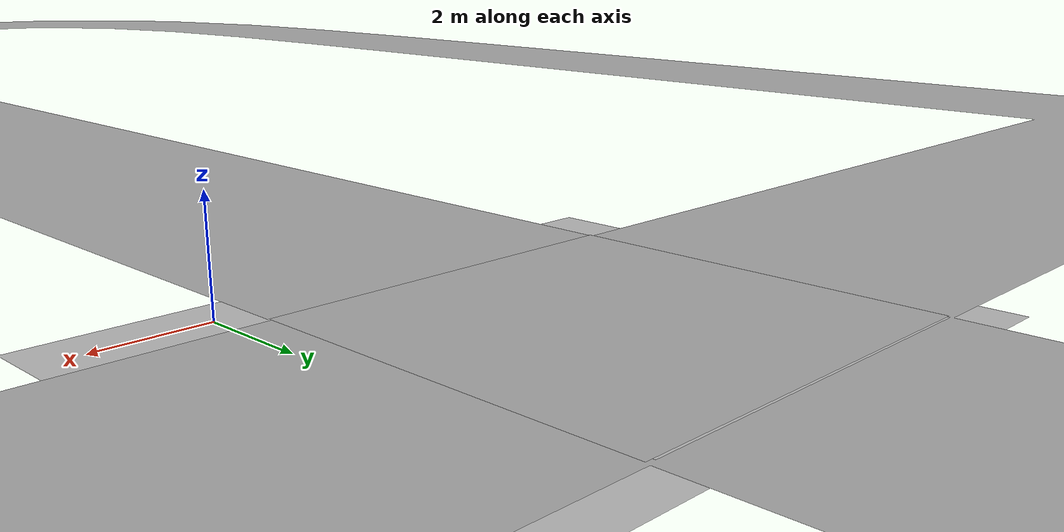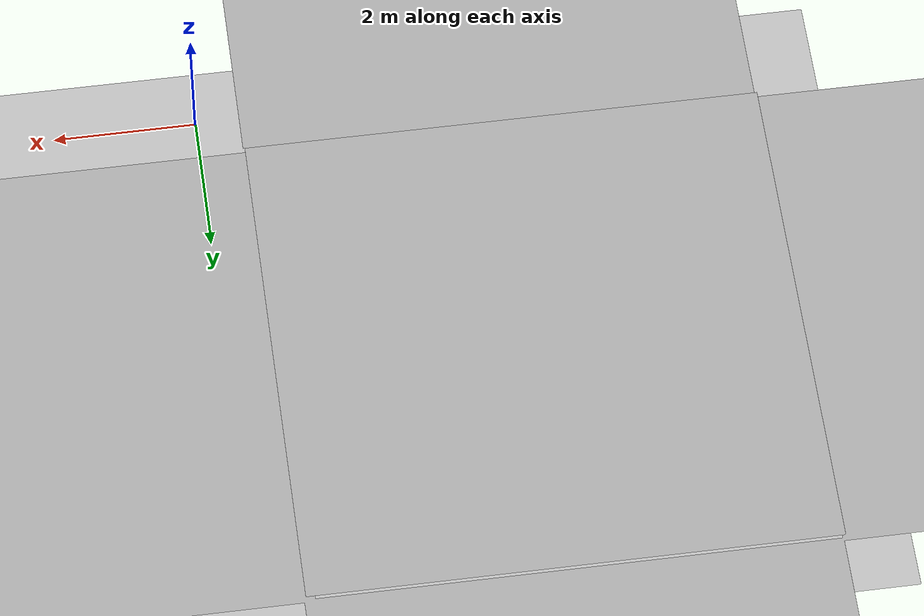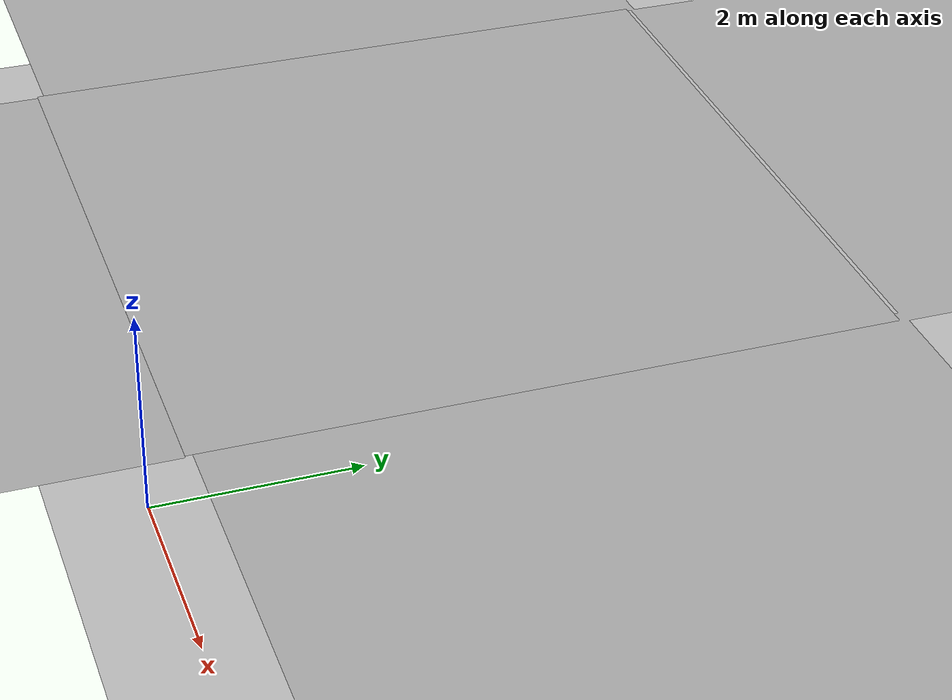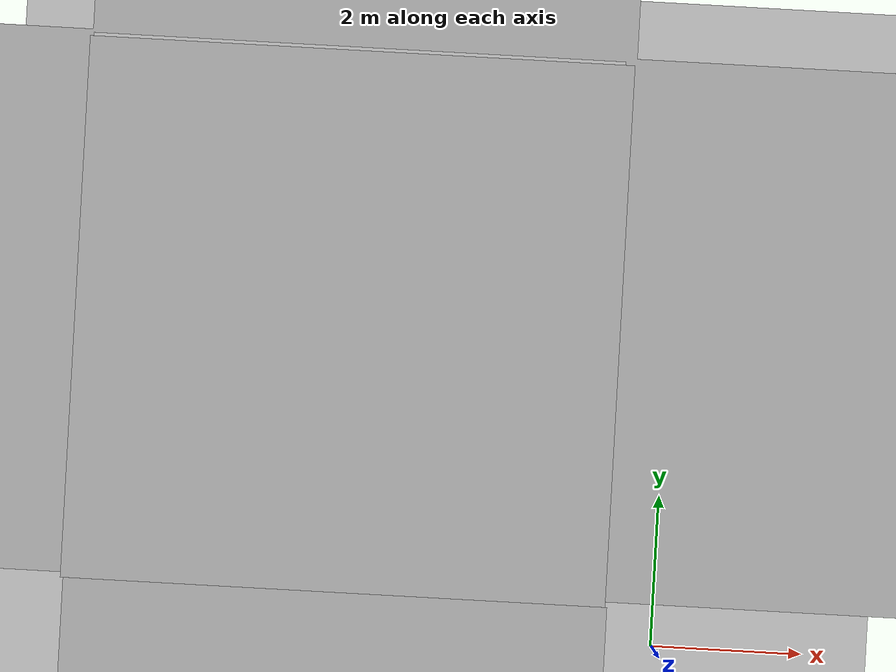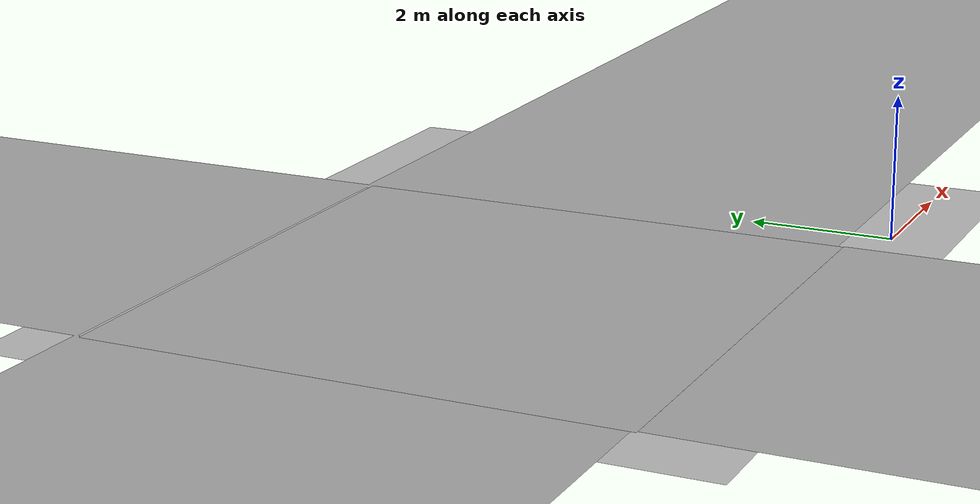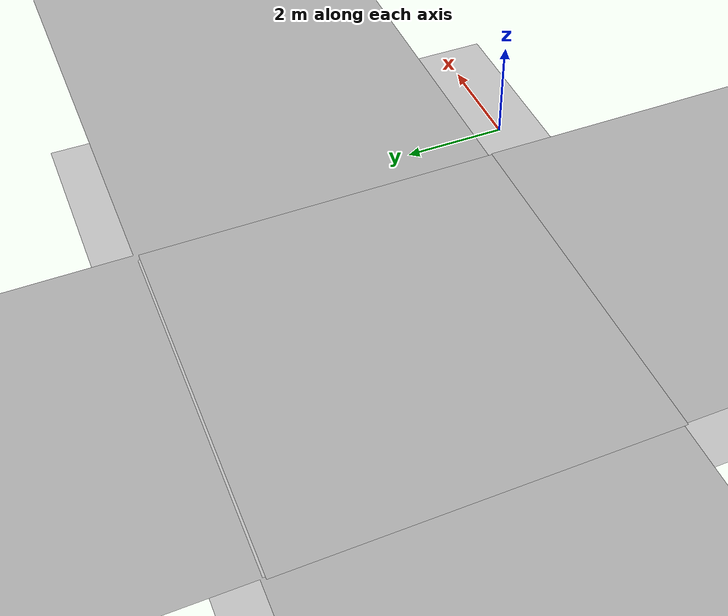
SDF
<?xml version="1.0" ?>
<sdf version="1.6">
  <world name="simple_world">
    <gravity>0 0 -9.8</gravity>
    <magnetic_field>6e-06 2.3e-05 -4.2e-05</magnetic_field>
    <atmosphere type='adiabatic'/>
    <physics type='ode'>
      <max_step_size>0.001</max_step_size>
      <real_time_factor>1</real_time_factor>
      <real_time_update_rate>1000</real_time_update_rate>
    </physics>
    <scene>
      <ambient>0.4 0.4 0.4 1</ambient>
      <background>0.7 0.7 0.7 1</background>
      <shadows>1</shadows>
    </scene>
    <audio>
      <device>default</device>
    </audio>
    <wind/>
    <spherical_coordinates>
      <surface_model>EARTH_WGS84</surface_model>
      <latitude_deg>0</latitude_deg>
      <longitude_deg>0</longitude_deg>
      <elevation>0</elevation>
      <heading_deg>0</heading_deg>
    </spherical_coordinates>

    <!-- Light source -->
    <light name='sun' type='directional'>
      <cast_shadows>1</cast_shadows>
      <pose>0 0 10 0 -0 0</pose>
      <diffuse>0.8 0.8 0.8 1</diffuse>
      <specular>0.2 0.2 0.2 1</specular>
      <attenuation>
        <range>1000</range>
        <constant>0.9</constant>
        <linear>0.01</linear>
        <quadratic>0.001</quadratic>
      </attenuation>
      <direction>-0.5 0.1 -0.9</direction>
      <spot>
        <inner_angle>0</inner_angle>
        <outer_angle>0</outer_angle>
        <falloff>0</falloff>
      </spot>
    </light>

    <!-- Ground Plane -->
    <model name='ground_plane'>
      <static>1</static>
      <link name='link'>
        <collision name='collision'>
          <geometry>
            <plane>
              <normal>0 0 1</normal>
              <size>100 100</size>
            </plane>
          </geometry>
          <surface>
            <friction>
              <ode>
                <mu>100</mu>
                <mu2>50</mu2>
              </ode>
              <torsional>
                <ode/>
              </torsional>
            </friction>
            <contact>
              <ode/>
            </contact>
            <bounce/>
          </surface>
          <max_contacts>10</max_contacts>
        </collision>
        <visual name='visual'>
          <cast_shadows>0</cast_shadows>
          <geometry>
            <plane>
              <normal>0 0 1</normal>
              <size>100 100</size>
            </plane>
          </geometry>
          <material>
            <script>
              <uri>file://media/materials/scripts/gazebo.material</uri>
              <name>Gazebo/Grey</name>
            </script>
          </material>
        </visual>
        <self_collide>0</self_collide>
        <enable_wind>0</enable_wind>
        <kinematic>0</kinematic>
      </link>
    </model>

    <!-- Self Driving Track -->
    <model name='self_driving_track'>
      <link name='link_0'>
        <pose>-0.03442 0.020057 0 0 -0 0</pose>
        <visual name='visual'>
          <pose>0 0 0 0 -0 0</pose>
          <geometry>
            <mesh>
              <uri>model://track/meshes/complete_circuit.dae</uri>
              <scale>1 1 1</scale>
            </mesh>
          </geometry>
          <material>
            <script>
              <uri>model://track/materials/scripts/</uri>
              <uri>model://track/materials/textures</uri>
              <name>road/Diffuse</name>
            </script>
          </material>
          <transparency>0</transparency>
          <cast_shadows>1</cast_shadows>
        </visual>
        <collision name='collision'>
          <laser_retro>0</laser_retro>
          <max_contacts>10</max_contacts>
          <pose>0 0 0 0 -0 0</pose>
          <geometry>
            <mesh>
              <uri>model://track/meshes/complete_circuit.dae</uri>
              <scale>1 1 1</scale>
            </mesh>
          </geometry>
          <surface>
            <friction>
              <ode>
                <mu>1</mu>
                <mu2>1</mu2>
                <fdir1>0 0 0</fdir1>
                <slip1>0</slip1>
                <slip2>0</slip2>
              </ode>
              <torsional>
                <coefficient>1</coefficient>
                <patch_radius>0</patch_radius>
                <surface_radius>0</surface_radius>
                <use_patch_radius>1</use_patch_radius>
                <ode>
                  <slip>0</slip>
                </ode>
              </torsional>
            </friction>
            <bounce>
              <restitution_coefficient>0</restitution_coefficient>
              <threshold>1e+06</threshold>
            </bounce>
            <contact>
              <collide_without_contact>0</collide_without_contact>
              <collide_without_contact_bitmask>1</collide_without_contact_bitmask>
              <collide_bitmask>1</collide_bitmask>
              <ode>
                <soft_cfm>0</soft_cfm>
                <soft_erp>0.2</soft_erp>
                <kp>1e+13</kp>
                <kd>1</kd>
                <max_vel>0.01</max_vel>
                <min_depth>0</min_depth>
              </ode>
              <bullet>
                <split_impulse>1</split_impulse>
                <split_impulse_penetration_threshold>-0.01</split_impulse_penetration_threshold>
                <soft_cfm>0</soft_cfm>
                <soft_erp>0.2</soft_erp>
                <kp>1e+13</kp>
                <kd>1</kd>
              </bullet>
            </contact>
          </surface>
        </collision>
        <self_collide>0</self_collide>
        <enable_wind>0</enable_wind>
        <kinematic>0</kinematic>
      </link>
      <link name='link_1'>
        <pose>0.034415 -0.020057 0 0 -0 0</pose>
        <visual name='visual'>
          <pose>0 0 0 0 -0 0</pose>
          <geometry>
            <mesh>
              <uri>model://track/meshes/chowk.dae</uri>
              <scale>1 1 1</scale>
            </mesh>
          </geometry>
          <material>
            <script>
              <uri>model://track/materials/scripts</uri>
              <uri>model://track/materials/textures</uri>
              <name>chowk/Diffuse</name>
            </script>
          </material>
          <transparency>0</transparency>
          <cast_shadows>1</cast_shadows>
        </visual>
        <collision name='collision'>
          <laser_retro>0</laser_retro>
          <max_contacts>10</max_contacts>
          <pose>0 0 0 0 -0 0</pose>
          <geometry>
            <mesh>
              <uri>model://track/meshes/chowk.dae</uri>
              <scale>1 1 1</scale>
            </mesh>
          </geometry>
          <surface>
            <friction>
              <ode>
                <mu>1</mu>
                <mu2>1</mu2>
                <fdir1>0 0 0</fdir1>
                <slip1>0</slip1>
                <slip2>0</slip2>
              </ode>
              <torsional>
                <coefficient>1</coefficient>
                <patch_radius>0</patch_radius>
                <surface_radius>0</surface_radius>
                <use_patch_radius>1</use_patch_radius>
                <ode>
                  <slip>0</slip>
                </ode>
              </torsional>
            </friction>
            <bounce>
              <restitution_coefficient>0</restitution_coefficient>
              <threshold>1e+06</threshold>
            </bounce>
            <contact>
              <collide_without_contact>0</collide_without_contact>
              <collide_without_contact_bitmask>1</collide_without_contact_bitmask>
              <collide_bitmask>1</collide_bitmask>
              <ode>
                <soft_cfm>0</soft_cfm>
                <soft_erp>0.2</soft_erp>
                <kp>1e+13</kp>
                <kd>1</kd>
                <max_vel>0.01</max_vel>
                <min_depth>0</min_depth>
              </ode>
              <bullet>
                <split_impulse>1</split_impulse>
                <split_impulse_penetration_threshold>-0.01</split_impulse_penetration_threshold>
                <soft_cfm>0</soft_cfm>
                <soft_erp>0.2</soft_erp>
                <kp>1e+13</kp>
                <kd>1</kd>
              </bullet>
            </contact>
          </surface>
        </collision>
        <self_collide>0</self_collide>
        <enable_wind>0</enable_wind>
        <kinematic>0</kinematic>
      </link>
      <static>1</static>
      <allow_auto_disable>1</allow_auto_disable>
      <pose>-10.4234 3.14346 0 0 -0 0</pose>
    </model>
  </world>
</sdf>
